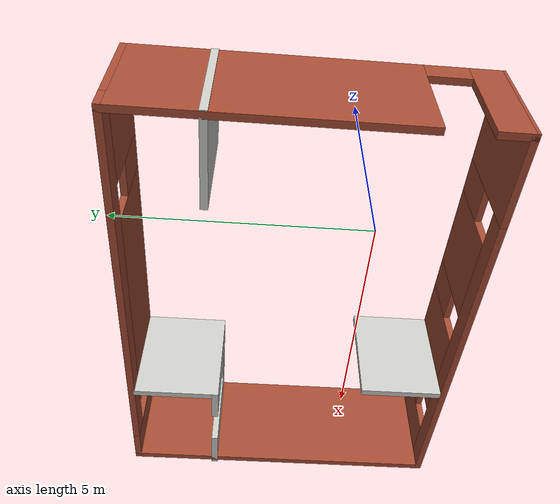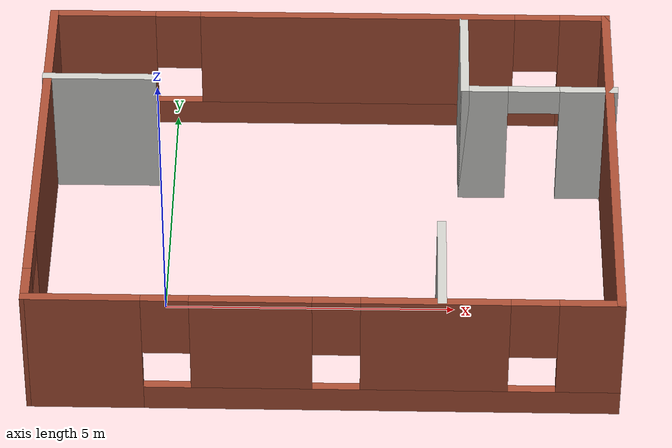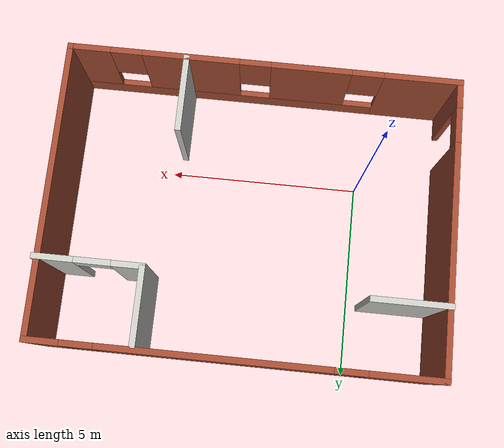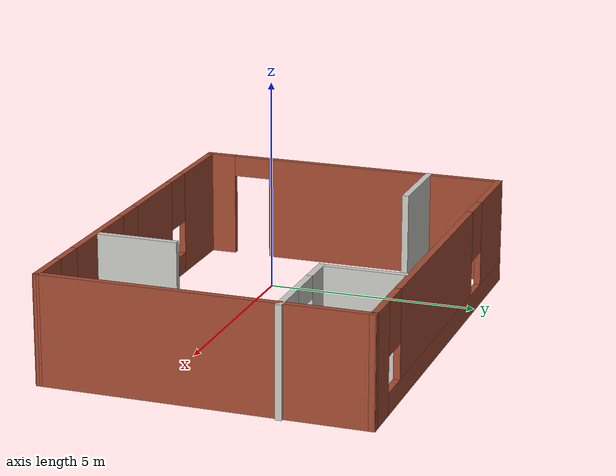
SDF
<?xml version='1.0'?>
<sdf version='1.7'>
  <model name='map1'>
    <pose>2.79051 1.27427 0 0 -0 0</pose>
    <link name='Wall_10'>
      <pose>-4.95199 0.007093 0 0 -0 -1.5708</pose>
      <visual name='Wall_10_Visual_0'>
        <pose>-0.82256 0 1.25 0 -0 0</pose>
        <geometry>
          <box>
            <size>5.85488 0.15 2.5</size>
          </box>
        </geometry>
        <material>
          <script>
            <uri>file://media/materials/scripts/gazebo.material</uri>
            <name>Gazebo/Bricks</name>
          </script>
          <ambient>1 1 1 1</ambient>
        </material>
        <meta>
          <layer>0</layer>
        </meta>
      </visual>
      <collision name='Wall_10_Collision_0'>
        <geometry>
          <box>
            <size>5.85488 0.15 2.5</size>
          </box>
        </geometry>
        <pose>-0.82256 0 1.25 0 -0 0</pose>
      </collision>
      <visual name='Wall_10_Visual_1'>
        <pose>3.37744 0 1.25 0 -0 0</pose>
        <geometry>
          <box>
            <size>0.745119 0.15 2.5</size>
          </box>
        </geometry>
        <material>
          <script>
            <uri>file://media/materials/scripts/gazebo.material</uri>
            <name>Gazebo/Bricks</name>
          </script>
          <ambient>1 1 1 1</ambient>
        </material>
        <meta>
          <layer>0</layer>
        </meta>
      </visual>
      <collision name='Wall_10_Collision_1'>
        <geometry>
          <box>
            <size>0.745119 0.15 2.5</size>
          </box>
        </geometry>
        <pose>3.37744 0 1.25 0 -0 0</pose>
      </collision>
      <visual name='Wall_10_Visual_2'>
        <pose>2.55488 0 2.25 0 -0 0</pose>
        <geometry>
          <box>
            <size>0.9 0.15 0.5</size>
          </box>
        </geometry>
        <material>
          <script>
            <uri>file://media/materials/scripts/gazebo.material</uri>
            <name>Gazebo/Bricks</name>
          </script>
          <ambient>1 1 1 1</ambient>
        </material>
        <meta>
          <layer>0</layer>
        </meta>
      </visual>
      <collision name='Wall_10_Collision_2'>
        <geometry>
          <box>
            <size>0.9 0.15 0.5</size>
          </box>
        </geometry>
        <pose>2.55488 0 2.25 0 -0 0</pose>
      </collision>
    </link>
    <link name='Wall_12'>
      <collision name='Wall_12_Collision'>
        <geometry>
          <box>
            <size>2 0.15 2.5</size>
          </box>
        </geometry>
        <pose>0 0 1.25 0 -0 0</pose>
      </collision>
      <visual name='Wall_12_Visual'>
        <pose>0 0 1.25 0 -0 0</pose>
        <geometry>
          <box>
            <size>2 0.15 2.5</size>
          </box>
        </geometry>
        <material>
          <script>
            <uri>file://media/materials/scripts/gazebo.material</uri>
            <name>Gazebo/CeilingTiled</name>
          </script>
          <ambient>1 1 1 1</ambient>
        </material>
        <meta>
          <layer>0</layer>
        </meta>
      </visual>
      <pose>2.37071 2.64174 0 0 -0 -1.5708</pose>
    </link>
    <link name='Wall_13'>
      <pose>3.67071 1.71674 0 0 -0 0</pose>
      <visual name='Wall_13_Visual_0'>
        <pose>-0.959093 0 1.25 0 -0 0</pose>
        <geometry>
          <box>
            <size>0.831814 0.15 2.5</size>
          </box>
        </geometry>
        <material>
          <script>
            <uri>file://media/materials/scripts/gazebo.material</uri>
            <name>Gazebo/CeilingTiled</name>
          </script>
          <ambient>1 1 1 1</ambient>
        </material>
        <meta>
          <layer>0</layer>
        </meta>
      </visual>
      <collision name='Wall_13_Collision_0'>
        <geometry>
          <box>
            <size>0.831814 0.15 2.5</size>
          </box>
        </geometry>
        <pose>-0.959093 0 1.25 0 -0 0</pose>
      </collision>
      <visual name='Wall_13_Visual_1'>
        <pose>0.865907 0 1.25 0 -0 0</pose>
        <geometry>
          <box>
            <size>1.01819 0.15 2.5</size>
          </box>
        </geometry>
        <material>
          <script>
            <uri>file://media/materials/scripts/gazebo.material</uri>
            <name>Gazebo/CeilingTiled</name>
          </script>
          <ambient>1 1 1 1</ambient>
        </material>
        <meta>
          <layer>0</layer>
        </meta>
      </visual>
      <collision name='Wall_13_Collision_1'>
        <geometry>
          <box>
            <size>1.01819 0.15 2.5</size>
          </box>
        </geometry>
        <pose>0.865907 0 1.25 0 -0 0</pose>
      </collision>
      <visual name='Wall_13_Visual_2'>
        <pose>-0.093186 0 2.25 0 -0 0</pose>
        <geometry>
          <box>
            <size>0.9 0.15 0.5</size>
          </box>
        </geometry>
        <material>
          <script>
            <uri>file://media/materials/scripts/gazebo.material</uri>
            <name>Gazebo/CeilingTiled</name>
          </script>
          <ambient>1 1 1 1</ambient>
        </material>
        <meta>
          <layer>0</layer>
        </meta>
      </visual>
      <collision name='Wall_13_Collision_2'>
        <geometry>
          <box>
            <size>0.9 0.15 0.5</size>
          </box>
        </geometry>
        <pose>-0.093186 0 2.25 0 -0 0</pose>
      </collision>
    </link>
    <link name='Wall_20'>
      <collision name='Wall_20_Collision'>
        <geometry>
          <box>
            <size>2 0.15 2.5</size>
          </box>
        </geometry>
        <pose>0 0 1.25 0 -0 0</pose>
      </collision>
      <visual name='Wall_20_Visual'>
        <pose>0 0 1.25 0 -0 0</pose>
        <geometry>
          <box>
            <size>2 0.15 2.5</size>
          </box>
        </geometry>
        <material>
          <script>
            <uri>file://media/materials/scripts/gazebo.material</uri>
            <name>Gazebo/CeilingTiled</name>
          </script>
          <ambient>1 1 1 1</ambient>
        </material>
        <meta>
          <layer>0</layer>
        </meta>
      </visual>
      <pose>-4.04571 1.94469 0 0 -0 0</pose>
    </link>
    <link name='Wall_22'>
      <collision name='Wall_22_Collision'>
        <geometry>
          <box>
            <size>2 0.15 2.5</size>
          </box>
        </geometry>
        <pose>0 0 1.25 0 -0 0</pose>
      </collision>
      <visual name='Wall_22_Visual'>
        <pose>0 0 1.25 0 -0 0</pose>
        <geometry>
          <box>
            <size>2 0.15 2.5</size>
          </box>
        </geometry>
        <material>
          <script>
            <uri>file://media/materials/scripts/gazebo.material</uri>
            <name>Gazebo/CeilingTiled</name>
          </script>
          <ambient>1 1 1 1</ambient>
        </material>
        <meta>
          <layer>0</layer>
        </meta>
      </visual>
      <pose>1.94534 -2.72791 0 0 -0 1.5708</pose>
    </link>
    <link name='Wall_5'>
      <pose>-0.026992 -3.67645 0 0 -0 -0.001736</pose>
      <visual name='Wall_5_Visual_0'>
        <pose>-4.00522 0 1.25 0 -0 0</pose>
        <geometry>
          <box>
            <size>1.98956 0.15 2.5</size>
          </box>
        </geometry>
        <material>
          <script>
            <uri>file://media/materials/scripts/gazebo.material</uri>
            <name>Gazebo/Bricks</name>
          </script>
          <ambient>1 1 1 1</ambient>
        </material>
        <meta>
          <layer>0</layer>
        </meta>
      </visual>
      <collision name='Wall_5_Collision_0'>
        <geometry>
          <box>
            <size>1.98956 0.15 2.5</size>
          </box>
        </geometry>
        <pose>-4.00522 0 1.25 0 -0 0</pose>
      </collision>
      <visual name='Wall_5_Visual_1'>
        <pose>0.99478 0 0.25 0 -0 0</pose>
        <geometry>
          <box>
            <size>8.01044 0.15 0.5</size>
          </box>
        </geometry>
        <material>
          <script>
            <uri>file://media/materials/scripts/gazebo.material</uri>
            <name>Gazebo/Bricks</name>
          </script>
          <ambient>1 1 1 1</ambient>
        </material>
        <meta>
          <layer>0</layer>
        </meta>
      </visual>
      <collision name='Wall_5_Collision_1'>
        <geometry>
          <box>
            <size>8.01044 0.15 0.5</size>
          </box>
        </geometry>
        <pose>0.99478 0 0.25 0 -0 0</pose>
      </collision>
      <visual name='Wall_5_Visual_2'>
        <pose>-1.19237 0 1.5 0 -0 0</pose>
        <geometry>
          <box>
            <size>2.03615 0.15 2</size>
          </box>
        </geometry>
        <material>
          <script>
            <uri>file://media/materials/scripts/gazebo.material</uri>
            <name>Gazebo/Bricks</name>
          </script>
          <ambient>1 1 1 1</ambient>
        </material>
        <meta>
          <layer>0</layer>
        </meta>
      </visual>
      <collision name='Wall_5_Collision_2'>
        <geometry>
          <box>
            <size>2.03615 0.15 2</size>
          </box>
        </geometry>
        <pose>-1.19237 0 1.5 0 -0 0</pose>
      </collision>
      <visual name='Wall_5_Visual_3'>
        <pose>1.86488 0 1.5 0 -0 0</pose>
        <geometry>
          <box>
            <size>2.47833 0.15 2</size>
          </box>
        </geometry>
        <material>
          <script>
            <uri>file://media/materials/scripts/gazebo.material</uri>
            <name>Gazebo/Bricks</name>
          </script>
          <ambient>1 1 1 1</ambient>
        </material>
        <meta>
          <layer>0</layer>
        </meta>
      </visual>
      <collision name='Wall_5_Collision_3'>
        <geometry>
          <box>
            <size>2.47833 0.15 2</size>
          </box>
        </geometry>
        <pose>1.86488 0 1.5 0 -0 0</pose>
      </collision>
      <visual name='Wall_5_Visual_4'>
        <pose>4.45202 0 1.5 0 -0 0</pose>
        <geometry>
          <box>
            <size>1.09596 0.15 2</size>
          </box>
        </geometry>
        <material>
          <script>
            <uri>file://media/materials/scripts/gazebo.material</uri>
            <name>Gazebo/Bricks</name>
          </script>
          <ambient>1 1 1 1</ambient>
        </material>
        <meta>
          <layer>0</layer>
        </meta>
      </visual>
      <collision name='Wall_5_Collision_4'>
        <geometry>
          <box>
            <size>1.09596 0.15 2</size>
          </box>
        </geometry>
        <pose>4.45202 0 1.5 0 -0 0</pose>
      </collision>
      <visual name='Wall_5_Visual_5'>
        <pose>-2.61044 0 1.9 0 -0 0</pose>
        <geometry>
          <box>
            <size>0.8 0.15 1.2</size>
          </box>
        </geometry>
        <material>
          <script>
            <uri>file://media/materials/scripts/gazebo.material</uri>
            <name>Gazebo/Bricks</name>
          </script>
          <ambient>1 1 1 1</ambient>
        </material>
        <meta>
          <layer>0</layer>
        </meta>
      </visual>
      <collision name='Wall_5_Collision_5'>
        <geometry>
          <box>
            <size>0.8 0.15 1.2</size>
          </box>
        </geometry>
        <pose>-2.61044 0 1.9 0 -0 0</pose>
      </collision>
      <visual name='Wall_5_Visual_6'>
        <pose>0.225708 0 1.9 0 -0 0</pose>
        <geometry>
          <box>
            <size>0.8 0.15 1.2</size>
          </box>
        </geometry>
        <material>
          <script>
            <uri>file://media/materials/scripts/gazebo.material</uri>
            <name>Gazebo/Bricks</name>
          </script>
          <ambient>1 1 1 1</ambient>
        </material>
        <meta>
          <layer>0</layer>
        </meta>
      </visual>
      <collision name='Wall_5_Collision_6'>
        <geometry>
          <box>
            <size>0.8 0.15 1.2</size>
          </box>
        </geometry>
        <pose>0.225708 0 1.9 0 -0 0</pose>
      </collision>
      <visual name='Wall_5_Visual_7'>
        <pose>3.50404 0 1.9 0 -0 0</pose>
        <geometry>
          <box>
            <size>0.8 0.15 1.2</size>
          </box>
        </geometry>
        <material>
          <script>
            <uri>file://media/materials/scripts/gazebo.material</uri>
            <name>Gazebo/Bricks</name>
          </script>
          <ambient>1 1 1 1</ambient>
        </material>
        <meta>
          <layer>0</layer>
        </meta>
      </visual>
      <collision name='Wall_5_Collision_7'>
        <geometry>
          <box>
            <size>0.8 0.15 1.2</size>
          </box>
        </geometry>
        <pose>3.50404 0 1.9 0 -0 0</pose>
      </collision>
    </link>
    <link name='Wall_6'>
      <collision name='Wall_6_Collision'>
        <geometry>
          <box>
            <size>7.5 0.15 2.5</size>
          </box>
        </geometry>
        <pose>0 0 1.25 0 -0 0</pose>
      </collision>
      <visual name='Wall_6_Visual'>
        <pose>0 0 1.25 0 -0 0</pose>
        <geometry>
          <box>
            <size>7.5 0.15 2.5</size>
          </box>
        </geometry>
        <material>
          <script>
            <uri>file://media/materials/scripts/gazebo.material</uri>
            <name>Gazebo/Bricks</name>
          </script>
          <ambient>1 1 1 1</ambient>
        </material>
        <meta>
          <layer>0</layer>
        </meta>
      </visual>
      <pose>4.89801 0.01011 0 0 -0 1.5708</pose>
    </link>
    <link name='Wall_9'>
      <pose>-0.026992 3.6836 0 0 -0 -3.14129</pose>
      <visual name='Wall_9_Visual_0'>
        <pose>-4.55255 0 1.25 0 -0 0</pose>
        <geometry>
          <box>
            <size>0.894905 0.15 2.5</size>
          </box>
        </geometry>
        <material>
          <script>
            <uri>file://media/materials/scripts/gazebo.material</uri>
            <name>Gazebo/Bricks</name>
          </script>
          <ambient>1 1 1 1</ambient>
        </material>
        <meta>
          <layer>0</layer>
        </meta>
      </visual>
      <collision name='Wall_9_Collision_0'>
        <geometry>
          <box>
            <size>0.894905 0.15 2.5</size>
          </box>
        </geometry>
        <pose>-4.55255 0 1.25 0 -0 0</pose>
      </collision>
      <visual name='Wall_9_Visual_1'>
        <pose>0.447453 0 0.25 0 -0 0</pose>
        <geometry>
          <box>
            <size>9.1051 0.15 0.5</size>
          </box>
        </geometry>
        <material>
          <script>
            <uri>file://media/materials/scripts/gazebo.material</uri>
            <name>Gazebo/Bricks</name>
          </script>
          <ambient>1 1 1 1</ambient>
        </material>
        <meta>
          <layer>0</layer>
        </meta>
      </visual>
      <collision name='Wall_9_Collision_1'>
        <geometry>
          <box>
            <size>9.1051 0.15 0.5</size>
          </box>
        </geometry>
        <pose>0.447453 0 0.25 0 -0 0</pose>
      </collision>
      <visual name='Wall_9_Visual_2'>
        <pose>-0.496971 0 1.5 0 -0 0</pose>
        <geometry>
          <box>
            <size>5.61625 0.15 2</size>
          </box>
        </geometry>
        <material>
          <script>
            <uri>file://media/materials/scripts/gazebo.material</uri>
            <name>Gazebo/Bricks</name>
          </script>
          <ambient>1 1 1 1</ambient>
        </material>
        <meta>
          <layer>0</layer>
        </meta>
      </visual>
      <collision name='Wall_9_Collision_2'>
        <geometry>
          <box>
            <size>5.61625 0.15 2</size>
          </box>
        </geometry>
        <pose>-0.496971 0 1.5 0 -0 0</pose>
      </collision>
      <visual name='Wall_9_Visual_3'>
        <pose>4.05558 0 1.5 0 -0 0</pose>
        <geometry>
          <box>
            <size>1.88885 0.15 2</size>
          </box>
        </geometry>
        <material>
          <script>
            <uri>file://media/materials/scripts/gazebo.material</uri>
            <name>Gazebo/Bricks</name>
          </script>
          <ambient>1 1 1 1</ambient>
        </material>
        <meta>
          <layer>0</layer>
        </meta>
      </visual>
      <collision name='Wall_9_Collision_3'>
        <geometry>
          <box>
            <size>1.88885 0.15 2</size>
          </box>
        </geometry>
        <pose>4.05558 0 1.5 0 -0 0</pose>
      </collision>
      <visual name='Wall_9_Visual_4'>
        <pose>-3.7051 0 1.9 0 -0 0</pose>
        <geometry>
          <box>
            <size>0.8 0.15 1.2</size>
          </box>
        </geometry>
        <material>
          <script>
            <uri>file://media/materials/scripts/gazebo.material</uri>
            <name>Gazebo/Bricks</name>
          </script>
          <ambient>1 1 1 1</ambient>
        </material>
        <meta>
          <layer>0</layer>
        </meta>
      </visual>
      <collision name='Wall_9_Collision_4'>
        <geometry>
          <box>
            <size>0.8 0.15 1.2</size>
          </box>
        </geometry>
        <pose>-3.7051 0 1.9 0 -0 0</pose>
      </collision>
      <visual name='Wall_9_Visual_5'>
        <pose>2.71115 0 1.9 0 -0 0</pose>
        <geometry>
          <box>
            <size>0.8 0.15 1.2</size>
          </box>
        </geometry>
        <material>
          <script>
            <uri>file://media/materials/scripts/gazebo.material</uri>
            <name>Gazebo/Bricks</name>
          </script>
          <ambient>1 1 1 1</ambient>
        </material>
        <meta>
          <layer>0</layer>
        </meta>
      </visual>
      <collision name='Wall_9_Collision_5'>
        <geometry>
          <box>
            <size>0.8 0.15 1.2</size>
          </box>
        </geometry>
        <pose>2.71115 0 1.9 0 -0 0</pose>
      </collision>
    </link>
    <static>1</static>
  </model>
</sdf>
